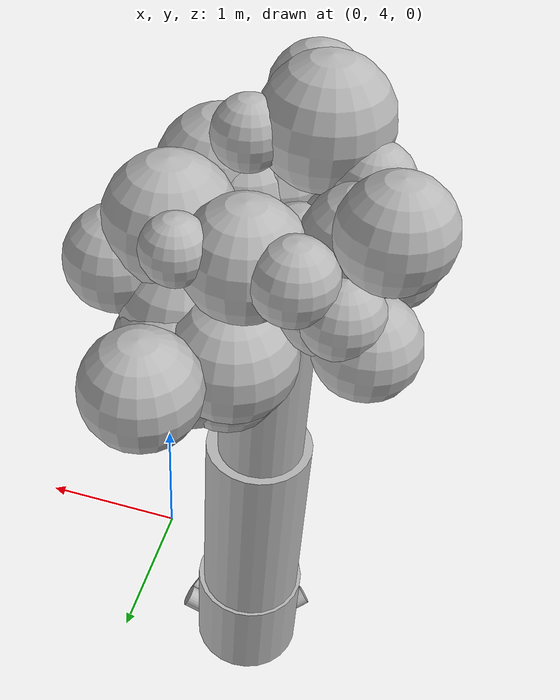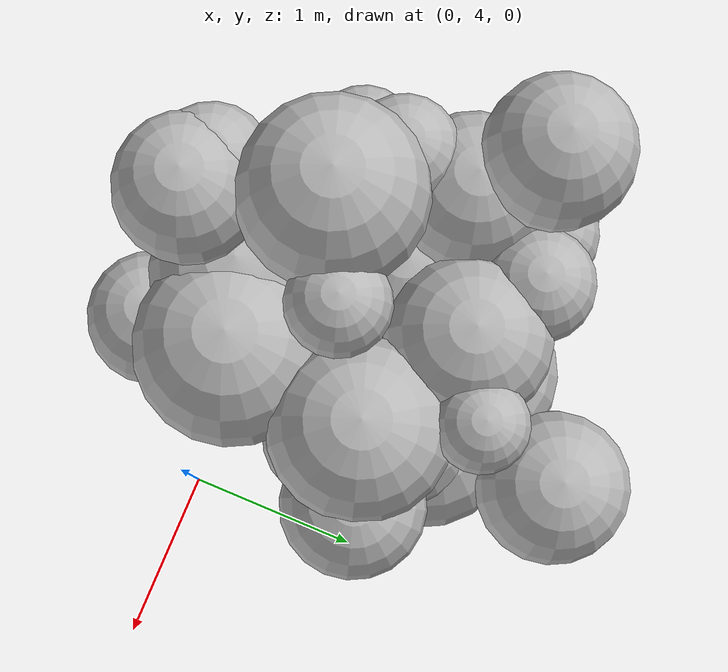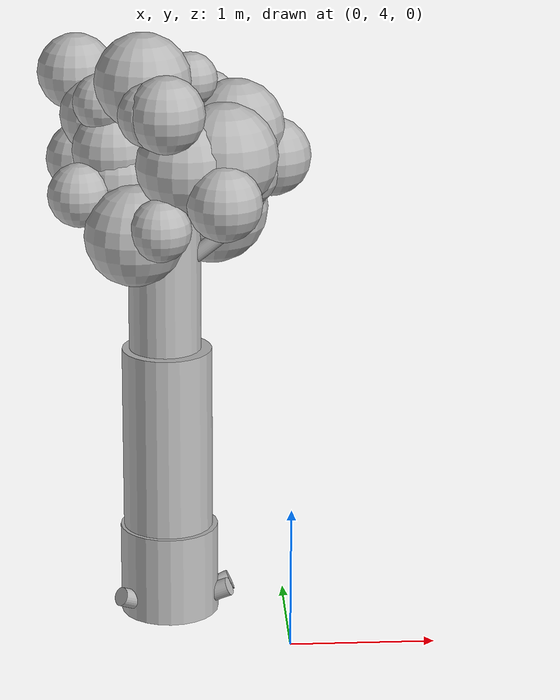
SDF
<sdf version="1.6">
 <world name="default">
  <model name="tree_8">
   <static>true</static>
   <pose>-0.8210 4.7250 0 0 0 0</pose>
   <link name="trunk">
    <pose>0 0 1.5000 0 0 0</pose>
    <collision name="trunk_c">
     <geometry><cylinder><radius>0.3500</radius><length>3.0000</length></cylinder></geometry>
    </collision>
   </link>
   <link name="trunk_v0">
    <pose>-0.0010 0.0010 0.3100 0 0 0</pose>
    <visual name="trunk_v0_v">
     <geometry><cylinder><radius>0.3448</radius><length>0.6448</length></cylinder></geometry>
     <material>
      <script>
       <uri>model://bushfire/materials/scripts</uri>
       <uri>model://bushfire/materials/textures</uri>
       <name>Bushfire/CharBark</name>
      </script>
     </material>
    </visual>
   </link>
   <link name="trunk_v1">
    <pose>-0.0073 0.0075 1.2700 0 0 0</pose>
    <visual name="trunk_v1_v">
     <geometry><cylinder><radius>0.3150</radius><length>1.3520</length></cylinder></geometry>
     <material>
      <script>
       <uri>model://bushfire/materials/scripts</uri>
       <uri>model://bushfire/materials/textures</uri>
       <name>Bushfire/BarkStringy</name>
      </script>
     </material>
    </visual>
   </link>
   <link name="trunk_v2">
    <pose>-0.0185 0.0188 2.4600 0 0 0</pose>
    <visual name="trunk_v2_v">
     <geometry><cylinder><radius>0.2520</radius><length>1.1232</length></cylinder></geometry>
     <material>
      <script>
       <uri>model://bushfire/materials/scripts</uri>
       <uri>model://bushfire/materials/textures</uri>
       <name>Bushfire/BarkStringy</name>
      </script>
     </material>
    </visual>
   </link>
   <link name="root0">
    <pose>0.2398 0.0107 0.09 0 1.150 0.044</pose>
    <visual name="root0_v">
     <geometry><cylinder><radius>0.0728</radius><length>0.4200</length></cylinder></geometry>
     <material>
      <script>
       <uri>model://bushfire/materials/scripts</uri>
       <uri>model://bushfire/materials/textures</uri>
       <name>Bushfire/CharBark</name>
      </script>
     </material>
    </visual>
   </link>
   <link name="root1">
    <pose>0.2328 -0.0585 0.09 0 1.150 6.037</pose>
    <visual name="root1_v">
     <geometry><cylinder><radius>0.0660</radius><length>0.4200</length></cylinder></geometry>
     <material>
      <script>
       <uri>model://bushfire/materials/scripts</uri>
       <uri>model://bushfire/materials/textures</uri>
       <name>Bushfire/CharBark</name>
      </script>
     </material>
    </visual>
   </link>
   <link name="root2">
    <pose>-0.1959 -0.1387 0.09 0 1.150 3.758</pose>
    <visual name="root2_v">
     <geometry><cylinder><radius>0.0661</radius><length>0.4200</length></cylinder></geometry>
     <material>
      <script>
       <uri>model://bushfire/materials/scripts</uri>
       <uri>model://bushfire/materials/textures</uri>
       <name>Bushfire/CharBark</name>
      </script>
     </material>
    </visual>
   </link>
   <link name="branch0">
    <pose>0.0176 0.2551 2.6035 0 0.9618 1.5020</pose>
    <visual name="branch0_v">
     <geometry><cylinder><radius>0.0490</radius><length>0.6235</length></cylinder></geometry>
     <material>
      <script>
       <uri>model://bushfire/materials/scripts</uri>
       <uri>model://bushfire/materials/textures</uri>
       <name>Bushfire/BarkStringy</name>
      </script>
     </material>
    </visual>
   </link>
   <link name="branch1">
    <pose>-0.1646 0.1319 3.0226 0 0.7261 2.4661</pose>
    <visual name="branch1_v">
     <geometry><cylinder><radius>0.0502</radius><length>0.6353</length></cylinder></geometry>
     <material>
      <script>
       <uri>model://bushfire/materials/scripts</uri>
       <uri>model://bushfire/materials/textures</uri>
       <name>Bushfire/BarkStringy</name>
      </script>
     </material>
    </visual>
   </link>
   <link name="branch2">
    <pose>-0.1564 -0.2438 2.8872 0 0.9759 4.1421</pose>
    <visual name="branch2_v">
     <geometry><cylinder><radius>0.0443</radius><length>0.6993</length></cylinder></geometry>
     <material>
      <script>
       <uri>model://bushfire/materials/scripts</uri>
       <uri>model://bushfire/materials/textures</uri>
       <name>Bushfire/BarkStringy</name>
      </script>
     </material>
    </visual>
   </link>
   <link name="branch3">
    <pose>0.0234 -0.2487 2.7786 0 0.8956 4.8062</pose>
    <visual name="branch3_v">
     <geometry><cylinder><radius>0.0308</radius><length>0.6401</length></cylinder></geometry>
     <material>
      <script>
       <uri>model://bushfire/materials/scripts</uri>
       <uri>model://bushfire/materials/textures</uri>
       <name>Bushfire/BarkStringy</name>
      </script>
     </material>
    </visual>
   </link>
   <link name="branch4">
    <pose>0.2516 -0.0468 2.6819 0 0.8796 6.0993</pose>
    <visual name="branch4_v">
     <geometry><cylinder><radius>0.0550</radius><length>0.6642</length></cylinder></geometry>
     <material>
      <script>
       <uri>model://bushfire/materials/scripts</uri>
       <uri>model://bushfire/materials/textures</uri>
       <name>Bushfire/BarkStringy</name>
      </script>
     </material>
    </visual>
   </link>
   <link name="foliage0">
    <pose>0.3188 0.5048 3.6322 0 0 0</pose>
    <visual name="foliage0_v">
     <geometry><sphere><radius>0.1718</radius></sphere></geometry>
     <material>
      <script>
       <uri>model://bushfire/materials/scripts</uri>
       <uri>model://bushfire/materials/textures</uri>
       <name>Bushfire/Foliage0</name>
      </script>
     </material>
    </visual>
   </link>
   <link name="foliage1">
    <pose>-0.6088 0.3796 3.8406 0 0 0</pose>
    <visual name="foliage1_v">
     <geometry><sphere><radius>0.2676</radius></sphere></geometry>
     <material>
      <script>
       <uri>model://bushfire/materials/scripts</uri>
       <uri>model://bushfire/materials/textures</uri>
       <name>Bushfire/Foliage0</name>
      </script>
     </material>
    </visual>
   </link>
   <link name="foliage2">
    <pose>-0.4333 -0.1080 3.7455 0 0 0</pose>
    <visual name="foliage2_v">
     <geometry><sphere><radius>0.2002</radius></sphere></geometry>
     <material>
      <script>
       <uri>model://bushfire/materials/scripts</uri>
       <uri>model://bushfire/materials/textures</uri>
       <name>Bushfire/Foliage2</name>
      </script>
     </material>
    </visual>
   </link>
   <link name="foliage3">
    <pose>-0.2267 -0.4737 2.9143 0 0 0</pose>
    <visual name="foliage3_v">
     <geometry><sphere><radius>0.3441</radius></sphere></geometry>
     <material>
      <script>
       <uri>model://bushfire/materials/scripts</uri>
       <uri>model://bushfire/materials/textures</uri>
       <name>Bushfire/Foliage0</name>
      </script>
     </material>
    </visual>
   </link>
   <link name="foliage4">
    <pose>0.4808 0.1179 3.4987 0 0 0</pose>
    <visual name="foliage4_v">
     <geometry><sphere><radius>0.3386</radius></sphere></geometry>
     <material>
      <script>
       <uri>model://bushfire/materials/scripts</uri>
       <uri>model://bushfire/materials/textures</uri>
       <name>Bushfire/Foliage1</name>
      </script>
     </material>
    </visual>
   </link>
   <link name="foliage5">
    <pose>0.3296 0.3458 2.8657 0 0 0</pose>
    <visual name="foliage5_v">
     <geometry><sphere><radius>0.3895</radius></sphere></geometry>
     <material>
      <script>
       <uri>model://bushfire/materials/scripts</uri>
       <uri>model://bushfire/materials/textures</uri>
       <name>Bushfire/Foliage1</name>
      </script>
     </material>
    </visual>
   </link>
   <link name="foliage6">
    <pose>-0.4455 0.4650 3.4107 0 0 0</pose>
    <visual name="foliage6_v">
     <geometry><sphere><radius>0.2039</radius></sphere></geometry>
     <material>
      <script>
       <uri>model://bushfire/materials/scripts</uri>
       <uri>model://bushfire/materials/textures</uri>
       <name>Bushfire/Foliage1</name>
      </script>
     </material>
    </visual>
   </link>
   <link name="foliage7">
    <pose>-0.1586 -0.2585 3.9270 0 0 0</pose>
    <visual name="foliage7_v">
     <geometry><sphere><radius>0.3295</radius></sphere></geometry>
     <material>
      <script>
       <uri>model://bushfire/materials/scripts</uri>
       <uri>model://bushfire/materials/textures</uri>
       <name>Bushfire/Foliage1</name>
      </script>
     </material>
    </visual>
   </link>
   <link name="foliage8">
    <pose>0.2361 -0.3434 3.4211 0 0 0</pose>
    <visual name="foliage8_v">
     <geometry><sphere><radius>0.2829</radius></sphere></geometry>
     <material>
      <script>
       <uri>model://bushfire/materials/scripts</uri>
       <uri>model://bushfire/materials/textures</uri>
       <name>Bushfire/Foliage0</name>
      </script>
     </material>
    </visual>
   </link>
   <link name="foliage9">
    <pose>0.3802 -0.4229 3.4440 0 0 0</pose>
    <visual name="foliage9_v">
     <geometry><sphere><radius>0.3656</radius></sphere></geometry>
     <material>
      <script>
       <uri>model://bushfire/materials/scripts</uri>
       <uri>model://bushfire/materials/textures</uri>
       <name>Bushfire/Foliage1</name>
      </script>
     </material>
    </visual>
   </link>
   <link name="foliage10">
    <pose>0.0430 0.3518 3.5347 0 0 0</pose>
    <visual name="foliage10_v">
     <geometry><sphere><radius>0.3053</radius></sphere></geometry>
     <material>
      <script>
       <uri>model://bushfire/materials/scripts</uri>
       <uri>model://bushfire/materials/textures</uri>
       <name>Bushfire/Foliage1</name>
      </script>
     </material>
    </visual>
   </link>
   <link name="foliage11">
    <pose>-0.5659 0.4001 3.2160 0 0 0</pose>
    <visual name="foliage11_v">
     <geometry><sphere><radius>0.2623</radius></sphere></geometry>
     <material>
      <script>
       <uri>model://bushfire/materials/scripts</uri>
       <uri>model://bushfire/materials/textures</uri>
       <name>Bushfire/Foliage1</name>
      </script>
     </material>
    </visual>
   </link>
   <link name="foliage12">
    <pose>-0.3288 -0.1028 3.2156 0 0 0</pose>
    <visual name="foliage12_v">
     <geometry><sphere><radius>0.3055</radius></sphere></geometry>
     <material>
      <script>
       <uri>model://bushfire/materials/scripts</uri>
       <uri>model://bushfire/materials/textures</uri>
       <name>Bushfire/Foliage0</name>
      </script>
     </material>
    </visual>
   </link>
   <link name="foliage13">
    <pose>-0.1191 -0.6814 3.8012 0 0 0</pose>
    <visual name="foliage13_v">
     <geometry><sphere><radius>0.2180</radius></sphere></geometry>
     <material>
      <script>
       <uri>model://bushfire/materials/scripts</uri>
       <uri>model://bushfire/materials/textures</uri>
       <name>Bushfire/Foliage0</name>
      </script>
     </material>
    </visual>
   </link>
   <link name="foliage14">
    <pose>0.7315 0.2027 3.2696 0 0 0</pose>
    <visual name="foliage14_v">
     <geometry><sphere><radius>0.2766</radius></sphere></geometry>
     <material>
      <script>
       <uri>model://bushfire/materials/scripts</uri>
       <uri>model://bushfire/materials/textures</uri>
       <name>Bushfire/Foliage0</name>
      </script>
     </material>
    </visual>
   </link>
   <link name="foliage15">
    <pose>0.0988 0.3729 2.8011 0 0 0</pose>
    <visual name="foliage15_v">
     <geometry><sphere><radius>0.2875</radius></sphere></geometry>
     <material>
      <script>
       <uri>model://bushfire/materials/scripts</uri>
       <uri>model://bushfire/materials/textures</uri>
       <name>Bushfire/Foliage2</name>
      </script>
     </material>
    </visual>
   </link>
   <link name="foliage16">
    <pose>-0.4400 0.1604 3.5937 0 0 0</pose>
    <visual name="foliage16_v">
     <geometry><sphere><radius>0.2848</radius></sphere></geometry>
     <material>
      <script>
       <uri>model://bushfire/materials/scripts</uri>
       <uri>model://bushfire/materials/textures</uri>
       <name>Bushfire/Foliage1</name>
      </script>
     </material>
    </visual>
   </link>
   <link name="foliage17">
    <pose>-0.5930 -0.3048 3.1544 0 0 0</pose>
    <visual name="foliage17_v">
     <geometry><sphere><radius>0.2192</radius></sphere></geometry>
     <material>
      <script>
       <uri>model://bushfire/materials/scripts</uri>
       <uri>model://bushfire/materials/textures</uri>
       <name>Bushfire/Foliage2</name>
      </script>
     </material>
    </visual>
   </link>
   <link name="foliage18">
    <pose>-0.0609 -0.7082 3.0171 0 0 0</pose>
    <visual name="foliage18_v">
     <geometry><sphere><radius>0.2124</radius></sphere></geometry>
     <material>
      <script>
       <uri>model://bushfire/materials/scripts</uri>
       <uri>model://bushfire/materials/textures</uri>
       <name>Bushfire/Foliage1</name>
      </script>
     </material>
    </visual>
   </link>
   <link name="foliage19">
    <pose>0.3713 0.2204 3.0619 0 0 0</pose>
    <visual name="foliage19_v">
     <geometry><sphere><radius>0.3402</radius></sphere></geometry>
     <material>
      <script>
       <uri>model://bushfire/materials/scripts</uri>
       <uri>model://bushfire/materials/textures</uri>
       <name>Bushfire/Foliage2</name>
      </script>
     </material>
    </visual>
   </link>
   <link name="foliage20">
    <pose>-0.2237 0.5015 3.5846 0 0 0</pose>
    <visual name="foliage20_v">
     <geometry><sphere><radius>0.2081</radius></sphere></geometry>
     <material>
      <script>
       <uri>model://bushfire/materials/scripts</uri>
       <uri>model://bushfire/materials/textures</uri>
       <name>Bushfire/Foliage2</name>
      </script>
     </material>
    </visual>
   </link>
   <link name="foliage21">
    <pose>-0.3600 -0.0968 3.4092 0 0 0</pose>
    <visual name="foliage21_v">
     <geometry><sphere><radius>0.2837</radius></sphere></geometry>
     <material>
      <script>
       <uri>model://bushfire/materials/scripts</uri>
       <uri>model://bushfire/materials/textures</uri>
       <name>Bushfire/Foliage1</name>
      </script>
     </material>
    </visual>
   </link>
   <link name="foliage22">
    <pose>-0.0146 -0.7294 3.8144 0 0 0</pose>
    <visual name="foliage22_v">
     <geometry><sphere><radius>0.2606</radius></sphere></geometry>
     <material>
      <script>
       <uri>model://bushfire/materials/scripts</uri>
       <uri>model://bushfire/materials/textures</uri>
       <name>Bushfire/Foliage2</name>
      </script>
     </material>
    </visual>
   </link>
   <link name="foliage23">
    <pose>0.1241 -0.4992 3.4052 0 0 0</pose>
    <visual name="foliage23_v">
     <geometry><sphere><radius>0.3439</radius></sphere></geometry>
     <material>
      <script>
       <uri>model://bushfire/materials/scripts</uri>
       <uri>model://bushfire/materials/textures</uri>
       <name>Bushfire/Foliage2</name>
      </script>
     </material>
    </visual>
   </link>
   <link name="foliage24">
    <pose>0.5303 0.0068 3.2063 0 0 0</pose>
    <visual name="foliage24_v">
     <geometry><sphere><radius>0.2405</radius></sphere></geometry>
     <material>
      <script>
       <uri>model://bushfire/materials/scripts</uri>
       <uri>model://bushfire/materials/textures</uri>
       <name>Bushfire/Foliage1</name>
      </script>
     </material>
    </visual>
   </link>
   <link name="foliage25">
    <pose>0.0602 0.4411 3.0082 0 0 0</pose>
    <visual name="foliage25_v">
     <geometry><sphere><radius>0.3324</radius></sphere></geometry>
     <material>
      <script>
       <uri>model://bushfire/materials/scripts</uri>
       <uri>model://bushfire/materials/textures</uri>
       <name>Bushfire/Foliage0</name>
      </script>
     </material>
    </visual>
   </link>
   <link name="foliage26">
    <pose>-0.3712 0.3454 3.3663 0 0 0</pose>
    <visual name="foliage26_v">
     <geometry><sphere><radius>0.2508</radius></sphere></geometry>
     <material>
      <script>
       <uri>model://bushfire/materials/scripts</uri>
       <uri>model://bushfire/materials/textures</uri>
       <name>Bushfire/Foliage2</name>
      </script>
     </material>
    </visual>
   </link>
   <link name="foliage27">
    <pose>0.1661 -0.1012 3.8990 0 0 0</pose>
    <visual name="foliage27_v">
     <geometry><sphere><radius>0.1837</radius></sphere></geometry>
     <material>
      <script>
       <uri>model://bushfire/materials/scripts</uri>
       <uri>model://bushfire/materials/textures</uri>
       <name>Bushfire/Foliage0</name>
      </script>
     </material>
    </visual>
   </link>
   <link name="foliage28">
    <pose>0.3665 -0.7697 3.2134 0 0 0</pose>
    <visual name="foliage28_v">
     <geometry><sphere><radius>0.2553</radius></sphere></geometry>
     <material>
      <script>
       <uri>model://bushfire/materials/scripts</uri>
       <uri>model://bushfire/materials/textures</uri>
       <name>Bushfire/Foliage0</name>
      </script>
     </material>
    </visual>
   </link>
   <link name="foliage29">
    <pose>0.3068 -0.3299 3.3587 0 0 0</pose>
    <visual name="foliage29_v">
     <geometry><sphere><radius>0.1735</radius></sphere></geometry>
     <material>
      <script>
       <uri>model://bushfire/materials/scripts</uri>
       <uri>model://bushfire/materials/textures</uri>
       <name>Bushfire/Foliage2</name>
      </script>
     </material>
    </visual>
   </link>
   <link name="foliage30">
    <pose>0.3637 0.8801 3.1048 0 0 0</pose>
    <visual name="foliage30_v">
     <geometry><sphere><radius>0.2976</radius></sphere></geometry>
     <material>
      <script>
       <uri>model://bushfire/materials/scripts</uri>
       <uri>model://bushfire/materials/textures</uri>
       <name>Bushfire/Foliage2</name>
      </script>
     </material>
    </visual>
   </link>
   <link name="foliage31">
    <pose>-0.1432 0.0302 3.3296 0 0 0</pose>
    <visual name="foliage31_v">
     <geometry><sphere><radius>0.2871</radius></sphere></geometry>
     <material>
      <script>
       <uri>model://bushfire/materials/scripts</uri>
       <uri>model://bushfire/materials/textures</uri>
       <name>Bushfire/Foliage2</name>
      </script>
     </material>
    </visual>
   </link>
  </model>
 </world>
</sdf>
